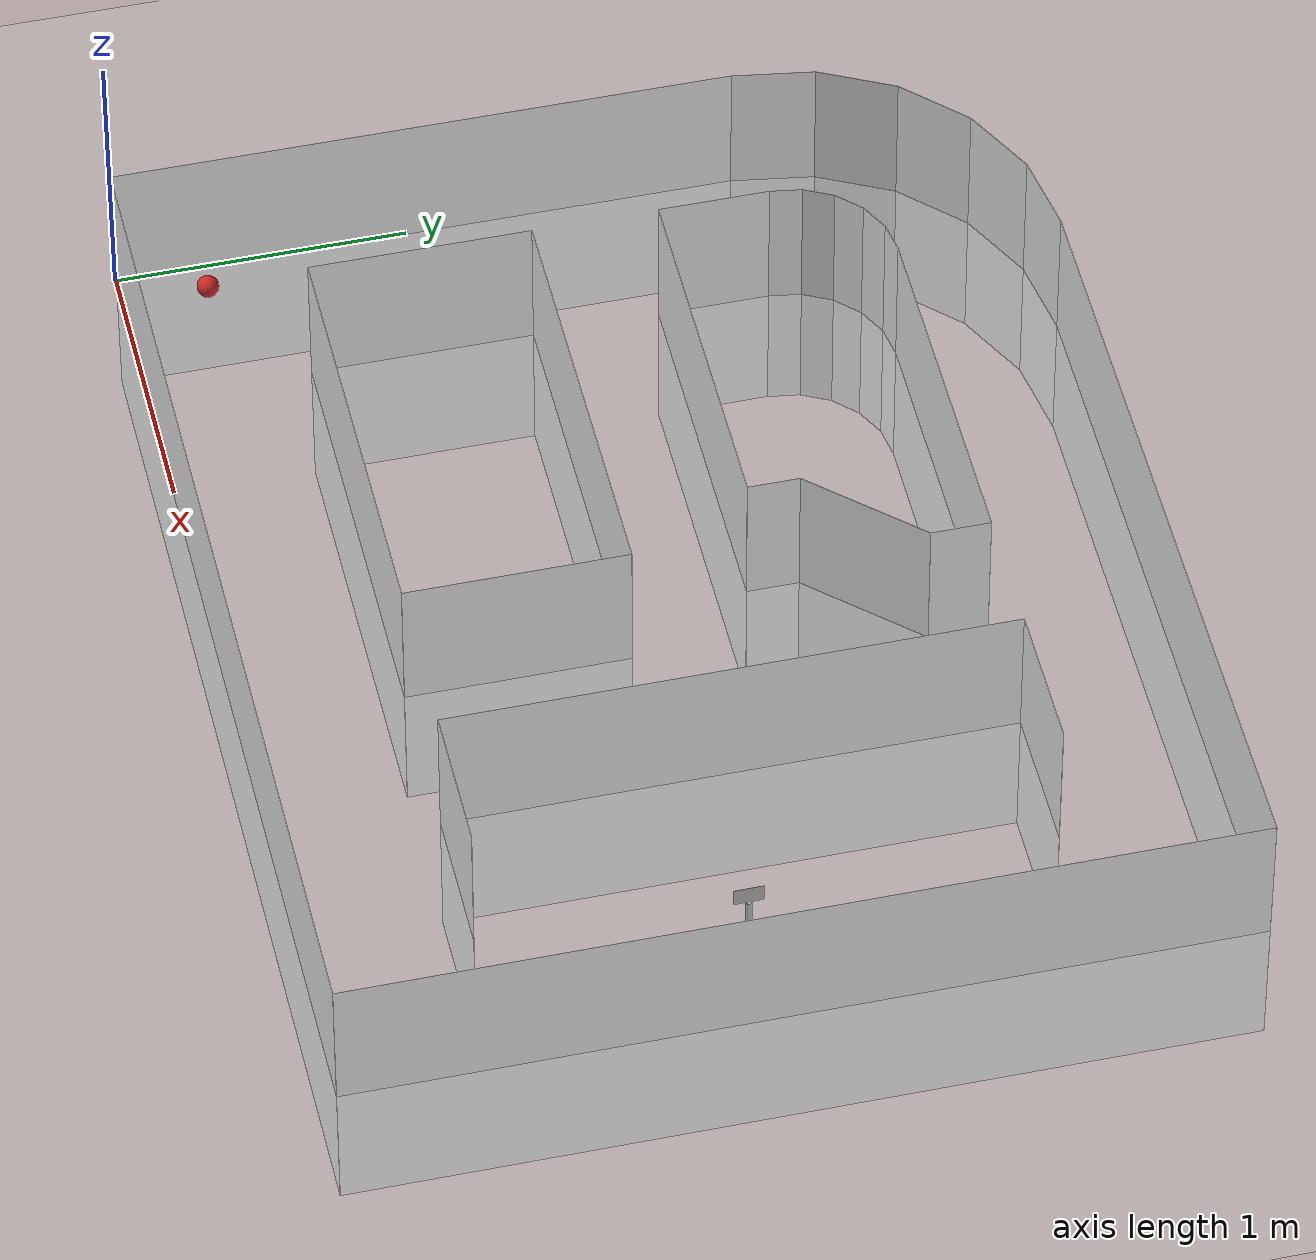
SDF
<sdf version="1.7">
 <world name="default">
  <light name="sun" type="directional">
   <pose>0 0 10 0 -0 0</pose>
   <diffuse>0.8 0.8 0.8 1</diffuse>
   <specular>0.1 0.1 0.1 1</specular>
   <attenuation>
    <range>1000</range>
    <constant>0.9</constant>
    <linear>0.01</linear>
    <quadratic>0.001</quadratic>
   </attenuation>
   <direction>-0.5 0.5 -1</direction>
   <spot><inner_angle>0</inner_angle><outer_angle>0</outer_angle><falloff>0</falloff></spot>
  </light>
  <model name="ground_plane">
   <static>1</static>
   <link name="link">
    <collision name="collision">
     <geometry><plane><normal>0 0 1</normal><size>100 100</size></plane></geometry>
     <surface><friction><ode><mu>100</mu><mu2>50</mu2></ode></friction></surface>
    </collision>
    <visual name="visual">
     <cast_shadows>0</cast_shadows>
     <geometry><plane><normal>0 0 1</normal><size>100 100</size></plane></geometry>
     <material>
      <script><uri>file://media/materials/scripts/gazebo.material</uri><name>Gazebo/Grey</name></script>
     </material>
    </visual>
   </link>
  </model>
  <model name="wall_0">
   <static>1</static>
   <link name="link">
    <collision name="collision"><geometry><box><size>2.1336 0.001 1</size></box></geometry></collision>
    <visual name="visual">
     <geometry><box><size>2.1336 0.001 1</size></box></geometry>
     <material>
      <script><name>Gazebo/White</name><uri>file://media/materials/scripts/gazebo.material</uri></script>
     </material>
    </visual>
   </link>
   <pose>-0.000362 1.06914 0 0 -0 1.5708</pose>
  </model>
  <model name="wall_1">
   <static>1</static>
   <link name="link">
    <collision name="collision"><geometry><box><size>0.286088 0.001 1</size></box></geometry></collision>
    <visual name="visual">
     <geometry><box><size>0.286088 0.001 1</size></box></geometry>
     <material>
      <script><name>Gazebo/White</name><uri>file://media/materials/scripts/gazebo.material</uri></script>
     </material>
    </visual>
   </link>
   <pose>0.022377 2.27489 0 0 -0 1.41372</pose>
  </model>
  <model name="wall_2">
   <static>1</static>
   <link name="link">
    <collision name="collision"><geometry><box><size>0.286088 0.001 1</size></box></geometry></collision>
    <visual name="visual">
     <geometry><box><size>0.286088 0.001 1</size></box></geometry>
     <material>
      <script><name>Gazebo/White</name><uri>file://media/materials/scripts/gazebo.material</uri></script>
     </material>
    </visual>
   </link>
   <pose>0.109695 2.54362 0 0 -0 1.09956</pose>
  </model>
  <model name="wall_3">
   <static>1</static>
   <link name="link">
    <collision name="collision"><geometry><box><size>0.286088 0.001 1</size></box></geometry></collision>
    <visual name="visual">
     <geometry><box><size>0.286088 0.001 1</size></box></geometry>
     <material>
      <script><name>Gazebo/White</name><uri>file://media/materials/scripts/gazebo.material</uri></script>
     </material>
    </visual>
   </link>
   <pose>0.275783 2.77222 0 0 -0 0.785398</pose>
  </model>
  <model name="wall_4">
   <static>1</static>
   <link name="link">
    <collision name="collision"><geometry><box><size>0.286088 0.001 1</size></box></geometry></collision>
    <visual name="visual">
     <geometry><box><size>0.286088 0.001 1</size></box></geometry>
     <material>
      <script><name>Gazebo/White</name><uri>file://media/materials/scripts/gazebo.material</uri></script>
     </material>
    </visual>
   </link>
   <pose>0.504383 2.93831 0 0 -0 0.471239</pose>
  </model>
  <model name="wall_5">
   <static>1</static>
   <link name="link">
    <collision name="collision"><geometry><box><size>0.286088 0.001 1</size></box></geometry></collision>
    <visual name="visual">
     <geometry><box><size>0.286088 0.001 1</size></box></geometry>
     <material>
      <script><name>Gazebo/White</name><uri>file://media/materials/scripts/gazebo.material</uri></script>
     </material>
    </visual>
   </link>
   <pose>0.773119 3.02563 0 0 -0 0.15708</pose>
  </model>
  <model name="wall_6">
   <static>1</static>
   <link name="link">
    <collision name="collision"><geometry><box><size>2.74321 0.001 1</size></box></geometry></collision>
    <visual name="visual">
     <geometry><box><size>2.74321 0.001 1</size></box></geometry>
     <material>
      <script><name>Gazebo/White</name><uri>file://media/materials/scripts/gazebo.material</uri></script>
     </material>
    </visual>
   </link>
   <pose>2.286 3.04801 0 0 -0 0</pose>
  </model>
  <model name="wall_7">
   <static>1</static>
   <link name="link">
    <collision name="collision"><geometry><box><size>3.04801 0.001 1</size></box></geometry></collision>
    <visual name="visual">
     <geometry><box><size>3.04801 0.001 1</size></box></geometry>
     <material>
      <script><name>Gazebo/White</name><uri>file://media/materials/scripts/gazebo.material</uri></script>
     </material>
    </visual>
   </link>
   <pose>3.65761 1.524 0 0 0 -1.5708</pose>
  </model>
  <model name="wall_8">
   <static>1</static>
   <link name="link">
    <collision name="collision"><geometry><box><size>3.65761 0.001 1</size></box></geometry></collision>
    <visual name="visual">
     <geometry><box><size>3.65761 0.001 1</size></box></geometry>
     <material>
      <script><name>Gazebo/White</name><uri>file://media/materials/scripts/gazebo.material</uri></script>
     </material>
    </visual>
   </link>
   <pose>1.8288 0 0 0 0 -3.14159</pose>
  </model>
  <model name="wall_9">
   <static>1</static>
   <link name="link">
    <collision name="collision"><geometry><box><size>0.762002 0.001 1</size></box></geometry></collision>
    <visual name="visual">
     <geometry><box><size>0.762002 0.001 1</size></box></geometry>
     <material>
      <script><name>Gazebo/White</name><uri>file://media/materials/scripts/gazebo.material</uri></script>
     </material>
    </visual>
   </link>
   <pose>0.558801 0.939802 0 0 -0 1.5708</pose>
  </model>
  <model name="wall_10">
   <static>1</static>
   <link name="link">
    <collision name="collision"><geometry><box><size>1.4986 0.001 1</size></box></geometry></collision>
    <visual name="visual">
     <geometry><box><size>1.4986 0.001 1</size></box></geometry>
     <material>
      <script><name>Gazebo/White</name><uri>file://media/materials/scripts/gazebo.material</uri></script>
     </material>
    </visual>
   </link>
   <pose>1.3081 1.3208 0 0 -0 0</pose>
  </model>
  <model name="wall_11">
   <static>1</static>
   <link name="link">
    <collision name="collision"><geometry><box><size>0.762002 0.001 1</size></box></geometry></collision>
    <visual name="visual">
     <geometry><box><size>0.762002 0.001 1</size></box></geometry>
     <material>
      <script><name>Gazebo/White</name><uri>file://media/materials/scripts/gazebo.material</uri></script>
     </material>
    </visual>
   </link>
   <pose>2.0574 0.939802 0 0 0 -1.5708</pose>
  </model>
  <model name="wall_12">
   <static>1</static>
   <link name="link">
    <collision name="collision"><geometry><box><size>1.4986 0.001 1</size></box></geometry></collision>
    <visual name="visual">
     <geometry><box><size>1.4986 0.001 1</size></box></geometry>
     <material>
      <script><name>Gazebo/White</name><uri>file://media/materials/scripts/gazebo.material</uri></script>
     </material>
    </visual>
   </link>
   <pose>1.3081 0.558801 0 0 0 -3.14159</pose>
  </model>
  <model name="wall_13">
   <static>1</static>
   <link name="link">
    <collision name="collision"><geometry><box><size>0.381001 0.001 1</size></box></geometry></collision>
    <visual name="visual">
     <geometry><box><size>0.381001 0.001 1</size></box></geometry>
     <material>
      <script><name>Gazebo/White</name><uri>file://media/materials/scripts/gazebo.material</uri></script>
     </material>
    </visual>
   </link>
   <pose>0.558801 1.9431 0 0 -0 1.5708</pose>
  </model>
  <model name="wall_14">
   <static>1</static>
   <link name="link">
    <collision name="collision"><geometry><box><size>0.111256 0.001 1</size></box></geometry></collision>
    <visual name="visual">
     <geometry><box><size>0.111256 0.001 1</size></box></geometry>
     <material>
      <script><name>Gazebo/White</name><uri>file://media/materials/scripts/gazebo.material</uri></script>
     </material>
    </visual>
   </link>
   <pose>0.567503 2.18855 0 0 -0 1.41372</pose>
  </model>
  <model name="wall_15">
   <static>1</static>
   <link name="link">
    <collision name="collision"><geometry><box><size>0.111256 0.001 1</size></box></geometry></collision>
    <visual name="visual">
     <geometry><box><size>0.111256 0.001 1</size></box></geometry>
     <material>
      <script><name>Gazebo/White</name><uri>file://media/materials/scripts/gazebo.material</uri></script>
     </material>
    </visual>
   </link>
   <pose>0.60146 2.29306 0 0 -0 1.09956</pose>
  </model>
  <model name="wall_16">
   <static>1</static>
   <link name="link">
    <collision name="collision"><geometry><box><size>0.111256 0.001 1</size></box></geometry></collision>
    <visual name="visual">
     <geometry><box><size>0.111256 0.001 1</size></box></geometry>
     <material>
      <script><name>Gazebo/White</name><uri>file://media/materials/scripts/gazebo.material</uri></script>
     </material>
    </visual>
   </link>
   <pose>0.66605 2.38196 0 0 -0 0.785398</pose>
  </model>
  <model name="wall_17">
   <static>1</static>
   <link name="link">
    <collision name="collision"><geometry><box><size>0.111256 0.001 1</size></box></geometry></collision>
    <visual name="visual">
     <geometry><box><size>0.111256 0.001 1</size></box></geometry>
     <material>
      <script><name>Gazebo/White</name><uri>file://media/materials/scripts/gazebo.material</uri></script>
     </material>
    </visual>
   </link>
   <pose>0.75495 2.44655 0 0 -0 0.471239</pose>
  </model>
  <model name="wall_18">
   <static>1</static>
   <link name="link">
    <collision name="collision"><geometry><box><size>0.111256 0.001 1</size></box></geometry></collision>
    <visual name="visual">
     <geometry><box><size>0.111256 0.001 1</size></box></geometry>
     <material>
      <script><name>Gazebo/White</name><uri>file://media/materials/scripts/gazebo.material</uri></script>
     </material>
    </visual>
   </link>
   <pose>0.859458 2.4805 0 0 -0 0.15708</pose>
  </model>
  <model name="wall_19">
   <static>1</static>
   <link name="link">
    <collision name="collision"><geometry><box><size>1.27 0.001 1</size></box></geometry></collision>
    <visual name="visual">
     <geometry><box><size>1.27 0.001 1</size></box></geometry>
     <material>
      <script><name>Gazebo/White</name><uri>file://media/materials/scripts/gazebo.material</uri></script>
     </material>
    </visual>
   </link>
   <pose>1.5494 2.48921 0 0 -0 0</pose>
  </model>
  <model name="wall_20">
   <static>1</static>
   <link name="link">
    <collision name="collision"><geometry><box><size>0.2032 0.001 1</size></box></geometry></collision>
    <visual name="visual">
     <geometry><box><size>0.2032 0.001 1</size></box></geometry>
     <material>
      <script><name>Gazebo/White</name><uri>file://media/materials/scripts/gazebo.material</uri></script>
     </material>
    </visual>
   </link>
   <pose>2.1844 2.38761 0 0 0 -1.5708</pose>
  </model>
  <model name="wall_21">
   <static>1</static>
   <link name="link">
    <collision name="collision"><geometry><box><size>0.485267 0.001 1</size></box></geometry></collision>
    <visual name="visual">
     <geometry><box><size>0.485267 0.001 1</size></box></geometry>
     <material>
      <script><name>Gazebo/White</name><uri>file://media/materials/scripts/gazebo.material</uri></script>
     </material>
    </visual>
   </link>
   <pose>2.0193 2.1082 0 0 0 -2.31917</pose>
  </model>
  <model name="wall_22">
   <static>1</static>
   <link name="link">
    <collision name="collision"><geometry><box><size>0.1778 0.001 1</size></box></geometry></collision>
    <visual name="visual">
     <geometry><box><size>0.1778 0.001 1</size></box></geometry>
     <material>
      <script><name>Gazebo/White</name><uri>file://media/materials/scripts/gazebo.material</uri></script>
     </material>
    </visual>
   </link>
   <pose>1.8542 1.8415 0 0 0 -1.5708</pose>
  </model>
  <model name="wall_23">
   <static>1</static>
   <link name="link">
    <collision name="collision"><geometry><box><size>1.2954 0.001 1</size></box></geometry></collision>
    <visual name="visual">
     <geometry><box><size>1.2954 0.001 1</size></box></geometry>
     <material>
      <script><name>Gazebo/White</name><uri>file://media/materials/scripts/gazebo.material</uri></script>
     </material>
    </visual>
   </link>
   <pose>1.2065 1.7526 0 0 0 -3.14159</pose>
  </model>
  <model name="wall_24">
   <static>1</static>
   <link name="link">
    <collision name="collision"><geometry><box><size>0.508001 0.001 1</size></box></geometry></collision>
    <visual name="visual">
     <geometry><box><size>0.508001 0.001 1</size></box></geometry>
     <material>
      <script><name>Gazebo/White</name><uri>file://media/materials/scripts/gazebo.material</uri></script>
     </material>
    </visual>
   </link>
   <pose>2.87021 2.48921 0 0 -0 0</pose>
  </model>
  <model name="wall_25">
   <static>1</static>
   <link name="link">
    <collision name="collision"><geometry><box><size>0.508001 0.001 1</size></box></geometry></collision>
    <visual name="visual">
     <geometry><box><size>0.508001 0.001 1</size></box></geometry>
     <material>
      <script><name>Gazebo/White</name><uri>file://media/materials/scripts/gazebo.material</uri></script>
     </material>
    </visual>
   </link>
   <pose>2.87021 0.558801 0 0 0 -3.14159</pose>
  </model>
  <model name="wall_26">
   <static>1</static>
   <link name="link">
    <collision name="collision"><geometry><box><size>1.9304 0.001 1</size></box></geometry></collision>
    <visual name="visual">
     <geometry><box><size>1.9304 0.001 1</size></box></geometry>
     <material>
      <script><name>Gazebo/White</name><uri>file://media/materials/scripts/gazebo.material</uri></script>
     </material>
    </visual>
   </link>
   <pose>2.6162 1.524 0 0 -0 1.5708</pose>
  </model>
  <model name="flag">
   <link name="plate">
    <pose>0 0 0.2425 0 -0 0</pose>
    <collision name="collision">
     <geometry><box><size>0.001 0.1 0.065</size></box></geometry>
     <surface><friction><ode><mu>1</mu><mu2>1</mu2></ode></friction></surface>
    </collision>
    <visual name="visual"><geometry><box><size>0.001 0.1 0.065</size></box></geometry></visual>
    <inertial>
     <inertia><ixx>0.1</ixx><ixy>0</ixy><ixz>0</ixz><iyy>0.1</iyy><iyz>0</iyz><izz>0.1</izz></inertia>
     <mass>0.1</mass>
    </inertial>
   </link>
   <link name="pole">
    <pose>0 0 0.11 0 -0 0</pose>
    <collision name="collision">
     <geometry><cylinder><radius>0.01</radius><length>0.2</length></cylinder></geometry>
     <surface>
      <friction><torsional><coefficient>1</coefficient></torsional><ode><mu>1</mu><mu2>1</mu2></ode></friction>
     </surface>
    </collision>
    <visual name="visual">
     <geometry><cylinder><radius>0.01</radius><length>0.2</length></cylinder></geometry>
    </visual>
    <inertial>
     <inertia><ixx>1</ixx><ixy>0</ixy><ixz>0</ixz><iyy>1</iyy><iyz>0</iyz><izz>1</izz></inertia>
     <mass>1</mass>
    </inertial>
   </link>
   <link name="base">
    <collision name="collision">
     <geometry><cylinder><radius>0.02</radius><length>0.02</length></cylinder></geometry>
     <surface><friction><ode><mu>0.01</mu><mu2>0.01</mu2></ode></friction></surface>
    </collision>
    <visual name="visual">
     <geometry><cylinder><radius>0.02</radius><length>0.02</length></cylinder></geometry>
    </visual>
    <inertial>
     <inertia><ixx>0.1</ixx><ixy>0</ixy><ixz>0</ixz><iyy>0.1</iyy><iyz>0</iyz><izz>0.1</izz></inertia>
     <mass>0.1</mass>
    </inertial>
    <gravity>0</gravity>
   </link>
   <joint name="base_pole" type="fixed">
    <parent>base</parent>
    <child>pole</child>
    <pose>0 0 0.02 0 -0 0</pose>
   </joint>
   <joint name="pole_plate" type="fixed">
    <parent>pole</parent>
    <child>plate</child>
    <pose>0 0 0.1 0 -0 0</pose>
   </joint>
   <pose>3.35001 1.40738 0.010005 -0.000607 0.00012 -3.13972</pose>
  </model>
  <gravity>0 0 -9.8</gravity>
  <magnetic_field>6e-06 2.3e-05 -4.2e-05</magnetic_field>
  <atmosphere type="adiabatic"/>
  <physics name="default_physics" default="0" type="ode">
   <max_step_size>0.001</max_step_size>
   <real_time_factor>1</real_time_factor>
   <real_time_update_rate>1000</real_time_update_rate>
  </physics>
  <scene><ambient>0.4 0.4 0.4 1</ambient><background>0.7 0.7 0.7 1</background><shadows>1</shadows></scene>
  <spherical_coordinates>
   <surface_model>EARTH_WGS84</surface_model>
   <latitude_deg>0</latitude_deg>
   <longitude_deg>0</longitude_deg>
   <elevation>0</elevation>
   <heading_deg>0</heading_deg>
  </spherical_coordinates>
  <model name="cricket_ball">
   <link name="link">
    <pose>0 0 0.0375 0 -0 0</pose>
    <inertial>
     <mass>0.1467</mass>
     <inertia>
      <ixx>8.25187e-05</ixx>
      <ixy>0</ixy>
      <ixz>0</ixz>
      <iyy>8.25187e-05</iyy>
      <iyz>0</iyz>
      <izz>8.25187e-05</izz>
     </inertia>
    </inertial>
    <collision name="collision">
     <geometry><sphere><radius>0.0375</radius></sphere></geometry>
     <surface>
      <contact>
       <poissons_ratio>0.347</poissons_ratio>
       <elastic_modulus>8.8e+09</elastic_modulus>
       <ode><kp>100000</kp><kd>100</kd><max_vel>100</max_vel><min_depth>0.001</min_depth></ode>
      </contact>
      <friction>
       <torsional>
        <coefficient>1</coefficient>
        <use_patch_radius>0</use_patch_radius>
        <surface_radius>0.01</surface_radius>
       </torsional>
      </friction>
     </surface>
    </collision>
    <visual name="visual">
     <geometry><sphere><radius>0.0375</radius></sphere></geometry>
     <material>
      <script><uri>file://media/materials/scripts/gazebo.material</uri><name>Gazebo/Red</name></script>
     </material>
    </visual>
    <velocity_decay><linear>0</linear><angular>0.005</angular></velocity_decay>
   </link>
   <pose>0.128935 0.291305 -0.001014 0 -0 0</pose>
  </model>
 </world>
</sdf>
